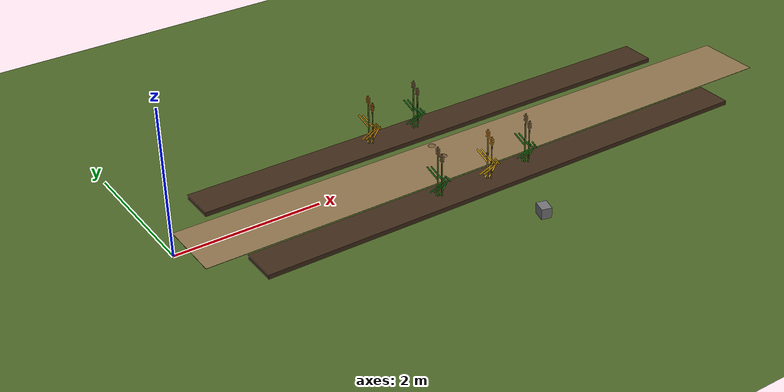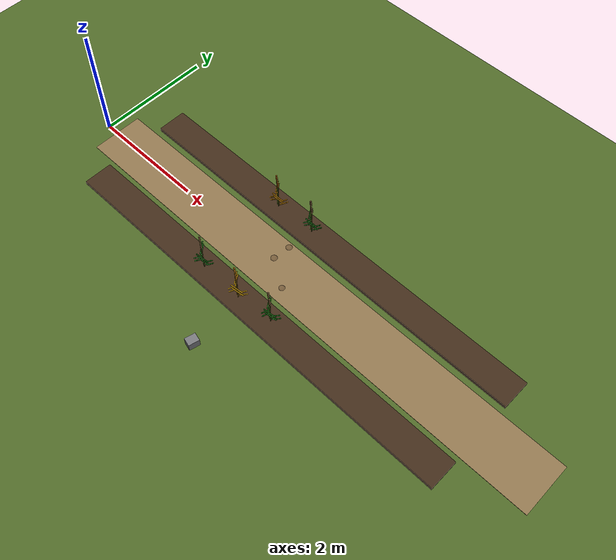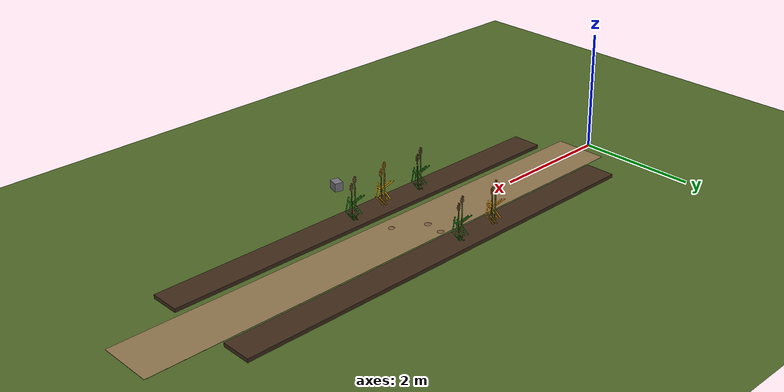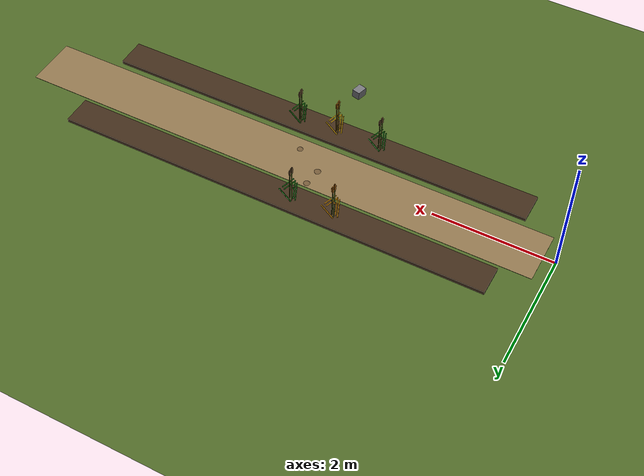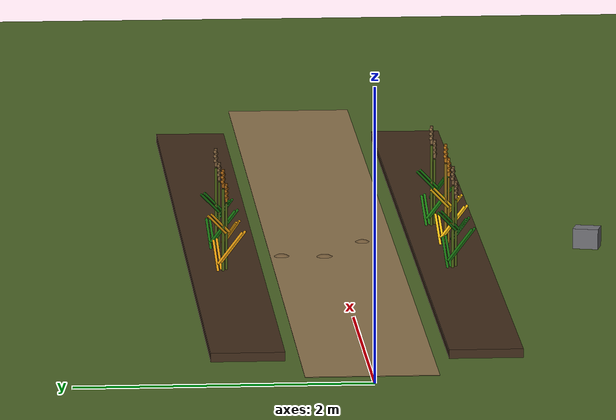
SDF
<sdf version="1.6">
 <world name="default">
  <model name="ground">
   <static>true</static>
   <link name="link">
    <collision name="col"><geometry><plane><normal>0 0 1</normal><size>40 40</size></plane></geometry></collision>
    <visual name="vis">
     <geometry><plane><normal>0 0 1</normal><size>40 40</size></plane></geometry>
     <material><ambient>0.30 0.40 0.15 1</ambient><diffuse>0.30 0.40 0.15 1</diffuse></material>
    </visual>
   </link>
  </model>
  <model name="path_1">
   <static>true</static>
   <pose>4.65 0.00 0.002 0 0 0.00</pose>
   <link name="link">
    <visual name="v">
     <geometry><box><size>8.90 0.90 0.004</size></box></geometry>
     <material><ambient>0.55 0.45 0.30 1</ambient><diffuse>0.55 0.45 0.30 1</diffuse></material>
    </visual>
   </link>
  </model>
  <model name="bed_1a">
   <static>true</static>
   <pose>4.35 -0.80 0.030 0 0 0.00</pose>
   <link name="link">
    <visual name="v">
     <geometry><box><size>7.30 0.50 0.060</size></box></geometry>
     <material><ambient>0.25 0.17 0.10 1</ambient><diffuse>0.25 0.17 0.10 1</diffuse></material>
    </visual>
   </link>
  </model>
  <model name="plant_04">
   <static>true</static>
   <pose>3.26 -0.78 0 0 0 0</pose>
   <link name="link">
    <visual name="stem_0">
     <pose>0.000 0.000 0.320 0.000 0.000 0.000</pose>
     <geometry><cylinder><radius>0.01</radius><length>0.64</length></cylinder></geometry>
     <material><ambient>0.30 0.38 0.08 1</ambient><diffuse>0.30 0.38 0.08 1</diffuse></material>
    </visual>
    <visual name="leaf_0_0">
     <pose>0.055 0.045 0.130 0.000 0.700 0.150</pose>
     <geometry><cylinder><radius>0.009</radius><length>0.3</length></cylinder></geometry>
     <material><ambient>0.08 0.42 0.05 1</ambient><diffuse>0.08 0.42 0.05 1</diffuse></material>
    </visual>
    <visual name="leaf_0_1">
     <pose>-0.055 -0.045 0.230 0.000 -0.720 1.900</pose>
     <geometry><cylinder><radius>0.009</radius><length>0.28</length></cylinder></geometry>
     <material><ambient>0.08 0.42 0.05 1</ambient><diffuse>0.08 0.42 0.05 1</diffuse></material>
    </visual>
    <visual name="leaf_0_2">
     <pose>0.055 -0.045 0.320 0.000 0.780 3.700</pose>
     <geometry><cylinder><radius>0.009</radius><length>0.24</length></cylinder></geometry>
     <material><ambient>0.08 0.42 0.05 1</ambient><diffuse>0.08 0.42 0.05 1</diffuse></material>
    </visual>
    <visual name="leaf_0_3">
     <pose>-0.055 0.045 0.400 0.000 -0.800 5.200</pose>
     <geometry><cylinder><radius>0.009</radius><length>0.2</length></cylinder></geometry>
     <material><ambient>0.08 0.42 0.05 1</ambient><diffuse>0.08 0.42 0.05 1</diffuse></material>
    </visual>
    <visual name="stem_1">
     <pose>0.045 -0.025 0.265 0.000 0.000 0.000</pose>
     <geometry><cylinder><radius>0.008</radius><length>0.53</length></cylinder></geometry>
     <material><ambient>0.30 0.38 0.08 1</ambient><diffuse>0.30 0.38 0.08 1</diffuse></material>
    </visual>
    <visual name="leaf_1_0">
     <pose>0.100 0.020 0.130 0.000 0.700 0.150</pose>
     <geometry><cylinder><radius>0.009</radius><length>0.3</length></cylinder></geometry>
     <material><ambient>0.08 0.42 0.05 1</ambient><diffuse>0.08 0.42 0.05 1</diffuse></material>
    </visual>
    <visual name="leaf_1_1">
     <pose>-0.010 -0.070 0.230 0.000 -0.720 1.900</pose>
     <geometry><cylinder><radius>0.009</radius><length>0.28</length></cylinder></geometry>
     <material><ambient>0.08 0.42 0.05 1</ambient><diffuse>0.08 0.42 0.05 1</diffuse></material>
    </visual>
    <visual name="leaf_1_2">
     <pose>0.100 -0.070 0.320 0.000 0.780 3.700</pose>
     <geometry><cylinder><radius>0.009</radius><length>0.24</length></cylinder></geometry>
     <material><ambient>0.08 0.42 0.05 1</ambient><diffuse>0.08 0.42 0.05 1</diffuse></material>
    </visual>
    <visual name="leaf_1_3">
     <pose>-0.010 0.020 0.400 0.000 -0.800 5.200</pose>
     <geometry><cylinder><radius>0.009</radius><length>0.2</length></cylinder></geometry>
     <material><ambient>0.08 0.42 0.05 1</ambient><diffuse>0.08 0.42 0.05 1</diffuse></material>
    </visual>
    <visual name="ear_axis_0">
     <pose>0.000 0.000 0.715 0.000 0.000 0.000</pose>
     <geometry><cylinder><radius>0.010</radius><length>0.13</length></cylinder></geometry>
     <material><ambient>0.48 0.36 0.22 1</ambient><diffuse>0.48 0.36 0.22 1</diffuse></material>
    </visual>
    <visual name="grain_0_0">
     <pose>0.012 -0.006 0.675 0.000 0.000 0.000</pose>
     <geometry><sphere><radius>0.012</radius></sphere></geometry>
     <material><ambient>0.48 0.36 0.22 1</ambient><diffuse>0.48 0.36 0.22 1</diffuse></material>
    </visual>
    <visual name="grain_0_1">
     <pose>-0.014 0.006 0.691 0.000 0.000 0.000</pose>
     <geometry><sphere><radius>0.012</radius></sphere></geometry>
     <material><ambient>0.48 0.36 0.22 1</ambient><diffuse>0.48 0.36 0.22 1</diffuse></material>
    </visual>
    <visual name="grain_0_2">
     <pose>0.016 -0.006 0.707 0.000 0.000 0.000</pose>
     <geometry><sphere><radius>0.012</radius></sphere></geometry>
     <material><ambient>0.48 0.36 0.22 1</ambient><diffuse>0.48 0.36 0.22 1</diffuse></material>
    </visual>
    <visual name="grain_0_3">
     <pose>-0.012 0.006 0.723 0.000 0.000 0.000</pose>
     <geometry><sphere><radius>0.012</radius></sphere></geometry>
     <material><ambient>0.48 0.36 0.22 1</ambient><diffuse>0.48 0.36 0.22 1</diffuse></material>
    </visual>
    <visual name="grain_0_4">
     <pose>0.014 -0.006 0.739 0.000 0.000 0.000</pose>
     <geometry><sphere><radius>0.012</radius></sphere></geometry>
     <material><ambient>0.48 0.36 0.22 1</ambient><diffuse>0.48 0.36 0.22 1</diffuse></material>
    </visual>
    <visual name="grain_0_5">
     <pose>-0.016 0.006 0.755 0.000 0.000 0.000</pose>
     <geometry><sphere><radius>0.012</radius></sphere></geometry>
     <material><ambient>0.48 0.36 0.22 1</ambient><diffuse>0.48 0.36 0.22 1</diffuse></material>
    </visual>
    <visual name="ear_axis_1">
     <pose>0.045 -0.025 0.605 0.000 0.000 0.000</pose>
     <geometry><cylinder><radius>0.010</radius><length>0.13</length></cylinder></geometry>
     <material><ambient>0.48 0.36 0.22 1</ambient><diffuse>0.48 0.36 0.22 1</diffuse></material>
    </visual>
    <visual name="grain_1_0">
     <pose>0.057 -0.031 0.565 0.000 0.000 0.000</pose>
     <geometry><sphere><radius>0.012</radius></sphere></geometry>
     <material><ambient>0.48 0.36 0.22 1</ambient><diffuse>0.48 0.36 0.22 1</diffuse></material>
    </visual>
    <visual name="grain_1_1">
     <pose>0.031 -0.019 0.581 0.000 0.000 0.000</pose>
     <geometry><sphere><radius>0.012</radius></sphere></geometry>
     <material><ambient>0.48 0.36 0.22 1</ambient><diffuse>0.48 0.36 0.22 1</diffuse></material>
    </visual>
    <visual name="grain_1_2">
     <pose>0.061 -0.031 0.597 0.000 0.000 0.000</pose>
     <geometry><sphere><radius>0.012</radius></sphere></geometry>
     <material><ambient>0.48 0.36 0.22 1</ambient><diffuse>0.48 0.36 0.22 1</diffuse></material>
    </visual>
    <visual name="grain_1_3">
     <pose>0.033 -0.019 0.613 0.000 0.000 0.000</pose>
     <geometry><sphere><radius>0.012</radius></sphere></geometry>
     <material><ambient>0.48 0.36 0.22 1</ambient><diffuse>0.48 0.36 0.22 1</diffuse></material>
    </visual>
    <visual name="grain_1_4">
     <pose>0.059 -0.031 0.629 0.000 0.000 0.000</pose>
     <geometry><sphere><radius>0.012</radius></sphere></geometry>
     <material><ambient>0.48 0.36 0.22 1</ambient><diffuse>0.48 0.36 0.22 1</diffuse></material>
    </visual>
    <visual name="grain_1_5">
     <pose>0.029 -0.019 0.645 0.000 0.000 0.000</pose>
     <geometry><sphere><radius>0.012</radius></sphere></geometry>
     <material><ambient>0.48 0.36 0.22 1</ambient><diffuse>0.48 0.36 0.22 1</diffuse></material>
    </visual>
   </link>
  </model>
  <model name="plant_05">
   <static>true</static>
   <pose>4.02 -0.79 0 0 0 0</pose>
   <link name="link">
    <visual name="stem_0">
     <pose>0.000 0.000 0.320 0.000 0.000 0.000</pose>
     <geometry><cylinder><radius>0.01</radius><length>0.64</length></cylinder></geometry>
     <material><ambient>0.55 0.42 0.08 1</ambient><diffuse>0.55 0.42 0.08 1</diffuse></material>
    </visual>
    <visual name="leaf_0_0">
     <pose>0.055 0.045 0.130 0.000 0.700 0.150</pose>
     <geometry><cylinder><radius>0.009</radius><length>0.3</length></cylinder></geometry>
     <material><ambient>0.95 0.73 0.06 1</ambient><diffuse>0.95 0.73 0.06 1</diffuse></material>
    </visual>
    <visual name="leaf_0_1">
     <pose>-0.055 -0.045 0.230 0.000 -0.720 1.900</pose>
     <geometry><cylinder><radius>0.009</radius><length>0.28</length></cylinder></geometry>
     <material><ambient>0.95 0.73 0.06 1</ambient><diffuse>0.95 0.73 0.06 1</diffuse></material>
    </visual>
    <visual name="leaf_0_2">
     <pose>0.055 -0.045 0.320 0.000 0.780 3.700</pose>
     <geometry><cylinder><radius>0.009</radius><length>0.24</length></cylinder></geometry>
     <material><ambient>0.95 0.73 0.06 1</ambient><diffuse>0.95 0.73 0.06 1</diffuse></material>
    </visual>
    <visual name="leaf_0_3">
     <pose>-0.055 0.045 0.400 0.000 -0.800 5.200</pose>
     <geometry><cylinder><radius>0.009</radius><length>0.2</length></cylinder></geometry>
     <material><ambient>0.95 0.73 0.06 1</ambient><diffuse>0.95 0.73 0.06 1</diffuse></material>
    </visual>
    <visual name="stem_1">
     <pose>0.045 -0.025 0.265 0.000 0.000 0.000</pose>
     <geometry><cylinder><radius>0.008</radius><length>0.53</length></cylinder></geometry>
     <material><ambient>0.55 0.42 0.08 1</ambient><diffuse>0.55 0.42 0.08 1</diffuse></material>
    </visual>
    <visual name="leaf_1_0">
     <pose>0.100 0.020 0.130 0.000 0.700 0.150</pose>
     <geometry><cylinder><radius>0.009</radius><length>0.3</length></cylinder></geometry>
     <material><ambient>0.95 0.73 0.06 1</ambient><diffuse>0.95 0.73 0.06 1</diffuse></material>
    </visual>
    <visual name="leaf_1_1">
     <pose>-0.010 -0.070 0.230 0.000 -0.720 1.900</pose>
     <geometry><cylinder><radius>0.009</radius><length>0.28</length></cylinder></geometry>
     <material><ambient>0.95 0.73 0.06 1</ambient><diffuse>0.95 0.73 0.06 1</diffuse></material>
    </visual>
    <visual name="leaf_1_2">
     <pose>0.100 -0.070 0.320 0.000 0.780 3.700</pose>
     <geometry><cylinder><radius>0.009</radius><length>0.24</length></cylinder></geometry>
     <material><ambient>0.95 0.73 0.06 1</ambient><diffuse>0.95 0.73 0.06 1</diffuse></material>
    </visual>
    <visual name="leaf_1_3">
     <pose>-0.010 0.020 0.400 0.000 -0.800 5.200</pose>
     <geometry><cylinder><radius>0.009</radius><length>0.2</length></cylinder></geometry>
     <material><ambient>0.95 0.73 0.06 1</ambient><diffuse>0.95 0.73 0.06 1</diffuse></material>
    </visual>
    <visual name="ear_axis_0">
     <pose>0.000 0.000 0.715 0.000 0.000 0.000</pose>
     <geometry><cylinder><radius>0.010</radius><length>0.13</length></cylinder></geometry>
     <material><ambient>0.72 0.45 0.08 1</ambient><diffuse>0.72 0.45 0.08 1</diffuse></material>
    </visual>
    <visual name="grain_0_0">
     <pose>0.012 -0.006 0.675 0.000 0.000 0.000</pose>
     <geometry><sphere><radius>0.012</radius></sphere></geometry>
     <material><ambient>0.72 0.45 0.08 1</ambient><diffuse>0.72 0.45 0.08 1</diffuse></material>
    </visual>
    <visual name="grain_0_1">
     <pose>-0.014 0.006 0.691 0.000 0.000 0.000</pose>
     <geometry><sphere><radius>0.012</radius></sphere></geometry>
     <material><ambient>0.72 0.45 0.08 1</ambient><diffuse>0.72 0.45 0.08 1</diffuse></material>
    </visual>
    <visual name="grain_0_2">
     <pose>0.016 -0.006 0.707 0.000 0.000 0.000</pose>
     <geometry><sphere><radius>0.012</radius></sphere></geometry>
     <material><ambient>0.72 0.45 0.08 1</ambient><diffuse>0.72 0.45 0.08 1</diffuse></material>
    </visual>
    <visual name="grain_0_3">
     <pose>-0.012 0.006 0.723 0.000 0.000 0.000</pose>
     <geometry><sphere><radius>0.012</radius></sphere></geometry>
     <material><ambient>0.72 0.45 0.08 1</ambient><diffuse>0.72 0.45 0.08 1</diffuse></material>
    </visual>
    <visual name="grain_0_4">
     <pose>0.014 -0.006 0.739 0.000 0.000 0.000</pose>
     <geometry><sphere><radius>0.012</radius></sphere></geometry>
     <material><ambient>0.72 0.45 0.08 1</ambient><diffuse>0.72 0.45 0.08 1</diffuse></material>
    </visual>
    <visual name="grain_0_5">
     <pose>-0.016 0.006 0.755 0.000 0.000 0.000</pose>
     <geometry><sphere><radius>0.012</radius></sphere></geometry>
     <material><ambient>0.72 0.45 0.08 1</ambient><diffuse>0.72 0.45 0.08 1</diffuse></material>
    </visual>
    <visual name="ear_axis_1">
     <pose>0.045 -0.025 0.605 0.000 0.000 0.000</pose>
     <geometry><cylinder><radius>0.010</radius><length>0.13</length></cylinder></geometry>
     <material><ambient>0.72 0.45 0.08 1</ambient><diffuse>0.72 0.45 0.08 1</diffuse></material>
    </visual>
    <visual name="grain_1_0">
     <pose>0.057 -0.031 0.565 0.000 0.000 0.000</pose>
     <geometry><sphere><radius>0.012</radius></sphere></geometry>
     <material><ambient>0.72 0.45 0.08 1</ambient><diffuse>0.72 0.45 0.08 1</diffuse></material>
    </visual>
    <visual name="grain_1_1">
     <pose>0.031 -0.019 0.581 0.000 0.000 0.000</pose>
     <geometry><sphere><radius>0.012</radius></sphere></geometry>
     <material><ambient>0.72 0.45 0.08 1</ambient><diffuse>0.72 0.45 0.08 1</diffuse></material>
    </visual>
    <visual name="grain_1_2">
     <pose>0.061 -0.031 0.597 0.000 0.000 0.000</pose>
     <geometry><sphere><radius>0.012</radius></sphere></geometry>
     <material><ambient>0.72 0.45 0.08 1</ambient><diffuse>0.72 0.45 0.08 1</diffuse></material>
    </visual>
    <visual name="grain_1_3">
     <pose>0.033 -0.019 0.613 0.000 0.000 0.000</pose>
     <geometry><sphere><radius>0.012</radius></sphere></geometry>
     <material><ambient>0.72 0.45 0.08 1</ambient><diffuse>0.72 0.45 0.08 1</diffuse></material>
    </visual>
    <visual name="grain_1_4">
     <pose>0.059 -0.031 0.629 0.000 0.000 0.000</pose>
     <geometry><sphere><radius>0.012</radius></sphere></geometry>
     <material><ambient>0.72 0.45 0.08 1</ambient><diffuse>0.72 0.45 0.08 1</diffuse></material>
    </visual>
    <visual name="grain_1_5">
     <pose>0.029 -0.019 0.645 0.000 0.000 0.000</pose>
     <geometry><sphere><radius>0.012</radius></sphere></geometry>
     <material><ambient>0.72 0.45 0.08 1</ambient><diffuse>0.72 0.45 0.08 1</diffuse></material>
    </visual>
   </link>
  </model>
  <model name="plant_06">
   <static>true</static>
   <pose>4.66 -0.74 0 0 0 0</pose>
   <link name="link">
    <visual name="stem_0">
     <pose>0.000 0.000 0.320 0.000 0.000 0.000</pose>
     <geometry><cylinder><radius>0.01</radius><length>0.64</length></cylinder></geometry>
     <material><ambient>0.30 0.38 0.08 1</ambient><diffuse>0.30 0.38 0.08 1</diffuse></material>
    </visual>
    <visual name="leaf_0_0">
     <pose>0.055 0.045 0.130 0.000 0.700 0.150</pose>
     <geometry><cylinder><radius>0.009</radius><length>0.3</length></cylinder></geometry>
     <material><ambient>0.10 0.48 0.06 1</ambient><diffuse>0.10 0.48 0.06 1</diffuse></material>
    </visual>
    <visual name="leaf_0_1">
     <pose>-0.055 -0.045 0.230 0.000 -0.720 1.900</pose>
     <geometry><cylinder><radius>0.009</radius><length>0.28</length></cylinder></geometry>
     <material><ambient>0.10 0.48 0.06 1</ambient><diffuse>0.10 0.48 0.06 1</diffuse></material>
    </visual>
    <visual name="leaf_0_2">
     <pose>0.055 -0.045 0.320 0.000 0.780 3.700</pose>
     <geometry><cylinder><radius>0.009</radius><length>0.24</length></cylinder></geometry>
     <material><ambient>0.10 0.48 0.06 1</ambient><diffuse>0.10 0.48 0.06 1</diffuse></material>
    </visual>
    <visual name="leaf_0_3">
     <pose>-0.055 0.045 0.400 0.000 -0.800 5.200</pose>
     <geometry><cylinder><radius>0.009</radius><length>0.2</length></cylinder></geometry>
     <material><ambient>0.10 0.48 0.06 1</ambient><diffuse>0.10 0.48 0.06 1</diffuse></material>
    </visual>
    <visual name="stem_1">
     <pose>0.045 -0.025 0.265 0.000 0.000 0.000</pose>
     <geometry><cylinder><radius>0.008</radius><length>0.53</length></cylinder></geometry>
     <material><ambient>0.30 0.38 0.08 1</ambient><diffuse>0.30 0.38 0.08 1</diffuse></material>
    </visual>
    <visual name="leaf_1_0">
     <pose>0.100 0.020 0.130 0.000 0.700 0.150</pose>
     <geometry><cylinder><radius>0.009</radius><length>0.3</length></cylinder></geometry>
     <material><ambient>0.10 0.48 0.06 1</ambient><diffuse>0.10 0.48 0.06 1</diffuse></material>
    </visual>
    <visual name="leaf_1_1">
     <pose>-0.010 -0.070 0.230 0.000 -0.720 1.900</pose>
     <geometry><cylinder><radius>0.009</radius><length>0.28</length></cylinder></geometry>
     <material><ambient>0.10 0.48 0.06 1</ambient><diffuse>0.10 0.48 0.06 1</diffuse></material>
    </visual>
    <visual name="leaf_1_2">
     <pose>0.100 -0.070 0.320 0.000 0.780 3.700</pose>
     <geometry><cylinder><radius>0.009</radius><length>0.24</length></cylinder></geometry>
     <material><ambient>0.10 0.48 0.06 1</ambient><diffuse>0.10 0.48 0.06 1</diffuse></material>
    </visual>
    <visual name="leaf_1_3">
     <pose>-0.010 0.020 0.400 0.000 -0.800 5.200</pose>
     <geometry><cylinder><radius>0.009</radius><length>0.2</length></cylinder></geometry>
     <material><ambient>0.10 0.48 0.06 1</ambient><diffuse>0.10 0.48 0.06 1</diffuse></material>
    </visual>
    <visual name="ear_axis_0">
     <pose>0.000 0.000 0.715 0.000 0.000 0.000</pose>
     <geometry><cylinder><radius>0.010</radius><length>0.13</length></cylinder></geometry>
     <material><ambient>0.52 0.40 0.25 1</ambient><diffuse>0.52 0.40 0.25 1</diffuse></material>
    </visual>
    <visual name="grain_0_0">
     <pose>0.012 -0.006 0.675 0.000 0.000 0.000</pose>
     <geometry><sphere><radius>0.012</radius></sphere></geometry>
     <material><ambient>0.52 0.40 0.25 1</ambient><diffuse>0.52 0.40 0.25 1</diffuse></material>
    </visual>
    <visual name="grain_0_1">
     <pose>-0.014 0.006 0.691 0.000 0.000 0.000</pose>
     <geometry><sphere><radius>0.012</radius></sphere></geometry>
     <material><ambient>0.52 0.40 0.25 1</ambient><diffuse>0.52 0.40 0.25 1</diffuse></material>
    </visual>
    <visual name="grain_0_2">
     <pose>0.016 -0.006 0.707 0.000 0.000 0.000</pose>
     <geometry><sphere><radius>0.012</radius></sphere></geometry>
     <material><ambient>0.52 0.40 0.25 1</ambient><diffuse>0.52 0.40 0.25 1</diffuse></material>
    </visual>
    <visual name="grain_0_3">
     <pose>-0.012 0.006 0.723 0.000 0.000 0.000</pose>
     <geometry><sphere><radius>0.012</radius></sphere></geometry>
     <material><ambient>0.52 0.40 0.25 1</ambient><diffuse>0.52 0.40 0.25 1</diffuse></material>
    </visual>
    <visual name="grain_0_4">
     <pose>0.014 -0.006 0.739 0.000 0.000 0.000</pose>
     <geometry><sphere><radius>0.012</radius></sphere></geometry>
     <material><ambient>0.52 0.40 0.25 1</ambient><diffuse>0.52 0.40 0.25 1</diffuse></material>
    </visual>
    <visual name="grain_0_5">
     <pose>-0.016 0.006 0.755 0.000 0.000 0.000</pose>
     <geometry><sphere><radius>0.012</radius></sphere></geometry>
     <material><ambient>0.52 0.40 0.25 1</ambient><diffuse>0.52 0.40 0.25 1</diffuse></material>
    </visual>
    <visual name="ear_axis_1">
     <pose>0.045 -0.025 0.605 0.000 0.000 0.000</pose>
     <geometry><cylinder><radius>0.010</radius><length>0.13</length></cylinder></geometry>
     <material><ambient>0.52 0.40 0.25 1</ambient><diffuse>0.52 0.40 0.25 1</diffuse></material>
    </visual>
    <visual name="grain_1_0">
     <pose>0.057 -0.031 0.565 0.000 0.000 0.000</pose>
     <geometry><sphere><radius>0.012</radius></sphere></geometry>
     <material><ambient>0.52 0.40 0.25 1</ambient><diffuse>0.52 0.40 0.25 1</diffuse></material>
    </visual>
    <visual name="grain_1_1">
     <pose>0.031 -0.019 0.581 0.000 0.000 0.000</pose>
     <geometry><sphere><radius>0.012</radius></sphere></geometry>
     <material><ambient>0.52 0.40 0.25 1</ambient><diffuse>0.52 0.40 0.25 1</diffuse></material>
    </visual>
    <visual name="grain_1_2">
     <pose>0.061 -0.031 0.597 0.000 0.000 0.000</pose>
     <geometry><sphere><radius>0.012</radius></sphere></geometry>
     <material><ambient>0.52 0.40 0.25 1</ambient><diffuse>0.52 0.40 0.25 1</diffuse></material>
    </visual>
    <visual name="grain_1_3">
     <pose>0.033 -0.019 0.613 0.000 0.000 0.000</pose>
     <geometry><sphere><radius>0.012</radius></sphere></geometry>
     <material><ambient>0.52 0.40 0.25 1</ambient><diffuse>0.52 0.40 0.25 1</diffuse></material>
    </visual>
    <visual name="grain_1_4">
     <pose>0.059 -0.031 0.629 0.000 0.000 0.000</pose>
     <geometry><sphere><radius>0.012</radius></sphere></geometry>
     <material><ambient>0.52 0.40 0.25 1</ambient><diffuse>0.52 0.40 0.25 1</diffuse></material>
    </visual>
    <visual name="grain_1_5">
     <pose>0.029 -0.019 0.645 0.000 0.000 0.000</pose>
     <geometry><sphere><radius>0.012</radius></sphere></geometry>
     <material><ambient>0.52 0.40 0.25 1</ambient><diffuse>0.52 0.40 0.25 1</diffuse></material>
    </visual>
   </link>
  </model>
  <model name="bed_1b">
   <static>true</static>
   <pose>4.35 0.80 0.030 0 0 0.00</pose>
   <link name="link">
    <visual name="v">
     <geometry><box><size>7.30 0.50 0.060</size></box></geometry>
     <material><ambient>0.25 0.17 0.10 1</ambient><diffuse>0.25 0.17 0.10 1</diffuse></material>
    </visual>
   </link>
  </model>
  <model name="plant_14">
   <static>true</static>
   <pose>3.26 0.82 0 0 0 0</pose>
   <link name="link">
    <visual name="stem_0">
     <pose>0.000 0.000 0.320 0.000 0.000 0.000</pose>
     <geometry><cylinder><radius>0.01</radius><length>0.64</length></cylinder></geometry>
     <material><ambient>0.30 0.38 0.08 1</ambient><diffuse>0.30 0.38 0.08 1</diffuse></material>
    </visual>
    <visual name="leaf_0_0">
     <pose>0.055 0.045 0.130 0.000 0.700 0.150</pose>
     <geometry><cylinder><radius>0.009</radius><length>0.3</length></cylinder></geometry>
     <material><ambient>0.86 0.58 0.04 1</ambient><diffuse>0.86 0.58 0.04 1</diffuse></material>
    </visual>
    <visual name="leaf_0_1">
     <pose>-0.055 -0.045 0.230 0.000 -0.720 1.900</pose>
     <geometry><cylinder><radius>0.009</radius><length>0.28</length></cylinder></geometry>
     <material><ambient>0.86 0.58 0.04 1</ambient><diffuse>0.86 0.58 0.04 1</diffuse></material>
    </visual>
    <visual name="leaf_0_2">
     <pose>0.055 -0.045 0.320 0.000 0.780 3.700</pose>
     <geometry><cylinder><radius>0.009</radius><length>0.24</length></cylinder></geometry>
     <material><ambient>0.86 0.58 0.04 1</ambient><diffuse>0.86 0.58 0.04 1</diffuse></material>
    </visual>
    <visual name="leaf_0_3">
     <pose>-0.055 0.045 0.400 0.000 -0.800 5.200</pose>
     <geometry><cylinder><radius>0.009</radius><length>0.2</length></cylinder></geometry>
     <material><ambient>0.86 0.58 0.04 1</ambient><diffuse>0.86 0.58 0.04 1</diffuse></material>
    </visual>
    <visual name="stem_1">
     <pose>0.045 -0.025 0.265 0.000 0.000 0.000</pose>
     <geometry><cylinder><radius>0.008</radius><length>0.53</length></cylinder></geometry>
     <material><ambient>0.30 0.38 0.08 1</ambient><diffuse>0.30 0.38 0.08 1</diffuse></material>
    </visual>
    <visual name="leaf_1_0">
     <pose>0.100 0.020 0.130 0.000 0.700 0.150</pose>
     <geometry><cylinder><radius>0.009</radius><length>0.3</length></cylinder></geometry>
     <material><ambient>0.86 0.58 0.04 1</ambient><diffuse>0.86 0.58 0.04 1</diffuse></material>
    </visual>
    <visual name="leaf_1_1">
     <pose>-0.010 -0.070 0.230 0.000 -0.720 1.900</pose>
     <geometry><cylinder><radius>0.009</radius><length>0.28</length></cylinder></geometry>
     <material><ambient>0.86 0.58 0.04 1</ambient><diffuse>0.86 0.58 0.04 1</diffuse></material>
    </visual>
    <visual name="leaf_1_2">
     <pose>0.100 -0.070 0.320 0.000 0.780 3.700</pose>
     <geometry><cylinder><radius>0.009</radius><length>0.24</length></cylinder></geometry>
     <material><ambient>0.86 0.58 0.04 1</ambient><diffuse>0.86 0.58 0.04 1</diffuse></material>
    </visual>
    <visual name="leaf_1_3">
     <pose>-0.010 0.020 0.400 0.000 -0.800 5.200</pose>
     <geometry><cylinder><radius>0.009</radius><length>0.2</length></cylinder></geometry>
     <material><ambient>0.86 0.58 0.04 1</ambient><diffuse>0.86 0.58 0.04 1</diffuse></material>
    </visual>
    <visual name="ear_axis_0">
     <pose>0.000 0.000 0.715 0.000 0.000 0.000</pose>
     <geometry><cylinder><radius>0.010</radius><length>0.13</length></cylinder></geometry>
     <material><ambient>0.62 0.36 0.06 1</ambient><diffuse>0.62 0.36 0.06 1</diffuse></material>
    </visual>
    <visual name="grain_0_0">
     <pose>0.012 -0.006 0.675 0.000 0.000 0.000</pose>
     <geometry><sphere><radius>0.012</radius></sphere></geometry>
     <material><ambient>0.62 0.36 0.06 1</ambient><diffuse>0.62 0.36 0.06 1</diffuse></material>
    </visual>
    <visual name="grain_0_1">
     <pose>-0.014 0.006 0.691 0.000 0.000 0.000</pose>
     <geometry><sphere><radius>0.012</radius></sphere></geometry>
     <material><ambient>0.62 0.36 0.06 1</ambient><diffuse>0.62 0.36 0.06 1</diffuse></material>
    </visual>
    <visual name="grain_0_2">
     <pose>0.016 -0.006 0.707 0.000 0.000 0.000</pose>
     <geometry><sphere><radius>0.012</radius></sphere></geometry>
     <material><ambient>0.62 0.36 0.06 1</ambient><diffuse>0.62 0.36 0.06 1</diffuse></material>
    </visual>
    <visual name="grain_0_3">
     <pose>-0.012 0.006 0.723 0.000 0.000 0.000</pose>
     <geometry><sphere><radius>0.012</radius></sphere></geometry>
     <material><ambient>0.62 0.36 0.06 1</ambient><diffuse>0.62 0.36 0.06 1</diffuse></material>
    </visual>
    <visual name="grain_0_4">
     <pose>0.014 -0.006 0.739 0.000 0.000 0.000</pose>
     <geometry><sphere><radius>0.012</radius></sphere></geometry>
     <material><ambient>0.62 0.36 0.06 1</ambient><diffuse>0.62 0.36 0.06 1</diffuse></material>
    </visual>
    <visual name="grain_0_5">
     <pose>-0.016 0.006 0.755 0.000 0.000 0.000</pose>
     <geometry><sphere><radius>0.012</radius></sphere></geometry>
     <material><ambient>0.62 0.36 0.06 1</ambient><diffuse>0.62 0.36 0.06 1</diffuse></material>
    </visual>
    <visual name="ear_axis_1">
     <pose>0.045 -0.025 0.605 0.000 0.000 0.000</pose>
     <geometry><cylinder><radius>0.010</radius><length>0.13</length></cylinder></geometry>
     <material><ambient>0.62 0.36 0.06 1</ambient><diffuse>0.62 0.36 0.06 1</diffuse></material>
    </visual>
    <visual name="grain_1_0">
     <pose>0.057 -0.031 0.565 0.000 0.000 0.000</pose>
     <geometry><sphere><radius>0.012</radius></sphere></geometry>
     <material><ambient>0.62 0.36 0.06 1</ambient><diffuse>0.62 0.36 0.06 1</diffuse></material>
    </visual>
    <visual name="grain_1_1">
     <pose>0.031 -0.019 0.581 0.000 0.000 0.000</pose>
     <geometry><sphere><radius>0.012</radius></sphere></geometry>
     <material><ambient>0.62 0.36 0.06 1</ambient><diffuse>0.62 0.36 0.06 1</diffuse></material>
    </visual>
    <visual name="grain_1_2">
     <pose>0.061 -0.031 0.597 0.000 0.000 0.000</pose>
     <geometry><sphere><radius>0.012</radius></sphere></geometry>
     <material><ambient>0.62 0.36 0.06 1</ambient><diffuse>0.62 0.36 0.06 1</diffuse></material>
    </visual>
    <visual name="grain_1_3">
     <pose>0.033 -0.019 0.613 0.000 0.000 0.000</pose>
     <geometry><sphere><radius>0.012</radius></sphere></geometry>
     <material><ambient>0.62 0.36 0.06 1</ambient><diffuse>0.62 0.36 0.06 1</diffuse></material>
    </visual>
    <visual name="grain_1_4">
     <pose>0.059 -0.031 0.629 0.000 0.000 0.000</pose>
     <geometry><sphere><radius>0.012</radius></sphere></geometry>
     <material><ambient>0.62 0.36 0.06 1</ambient><diffuse>0.62 0.36 0.06 1</diffuse></material>
    </visual>
    <visual name="grain_1_5">
     <pose>0.029 -0.019 0.645 0.000 0.000 0.000</pose>
     <geometry><sphere><radius>0.012</radius></sphere></geometry>
     <material><ambient>0.62 0.36 0.06 1</ambient><diffuse>0.62 0.36 0.06 1</diffuse></material>
    </visual>
   </link>
  </model>
  <model name="plant_15">
   <static>true</static>
   <pose>3.98 0.83 0 0 0 0</pose>
   <link name="link">
    <visual name="stem_0">
     <pose>0.000 0.000 0.320 0.000 0.000 0.000</pose>
     <geometry><cylinder><radius>0.01</radius><length>0.64</length></cylinder></geometry>
     <material><ambient>0.30 0.38 0.08 1</ambient><diffuse>0.30 0.38 0.08 1</diffuse></material>
    </visual>
    <visual name="leaf_0_0">
     <pose>0.055 0.045 0.130 0.000 0.700 0.150</pose>
     <geometry><cylinder><radius>0.009</radius><length>0.3</length></cylinder></geometry>
     <material><ambient>0.08 0.42 0.05 1</ambient><diffuse>0.08 0.42 0.05 1</diffuse></material>
    </visual>
    <visual name="leaf_0_1">
     <pose>-0.055 -0.045 0.230 0.000 -0.720 1.900</pose>
     <geometry><cylinder><radius>0.009</radius><length>0.28</length></cylinder></geometry>
     <material><ambient>0.08 0.42 0.05 1</ambient><diffuse>0.08 0.42 0.05 1</diffuse></material>
    </visual>
    <visual name="leaf_0_2">
     <pose>0.055 -0.045 0.320 0.000 0.780 3.700</pose>
     <geometry><cylinder><radius>0.009</radius><length>0.24</length></cylinder></geometry>
     <material><ambient>0.08 0.42 0.05 1</ambient><diffuse>0.08 0.42 0.05 1</diffuse></material>
    </visual>
    <visual name="leaf_0_3">
     <pose>-0.055 0.045 0.400 0.000 -0.800 5.200</pose>
     <geometry><cylinder><radius>0.009</radius><length>0.2</length></cylinder></geometry>
     <material><ambient>0.08 0.42 0.05 1</ambient><diffuse>0.08 0.42 0.05 1</diffuse></material>
    </visual>
    <visual name="stem_1">
     <pose>0.045 -0.025 0.265 0.000 0.000 0.000</pose>
     <geometry><cylinder><radius>0.008</radius><length>0.53</length></cylinder></geometry>
     <material><ambient>0.30 0.38 0.08 1</ambient><diffuse>0.30 0.38 0.08 1</diffuse></material>
    </visual>
    <visual name="leaf_1_0">
     <pose>0.100 0.020 0.130 0.000 0.700 0.150</pose>
     <geometry><cylinder><radius>0.009</radius><length>0.3</length></cylinder></geometry>
     <material><ambient>0.08 0.42 0.05 1</ambient><diffuse>0.08 0.42 0.05 1</diffuse></material>
    </visual>
    <visual name="leaf_1_1">
     <pose>-0.010 -0.070 0.230 0.000 -0.720 1.900</pose>
     <geometry><cylinder><radius>0.009</radius><length>0.28</length></cylinder></geometry>
     <material><ambient>0.08 0.42 0.05 1</ambient><diffuse>0.08 0.42 0.05 1</diffuse></material>
    </visual>
    <visual name="leaf_1_2">
     <pose>0.100 -0.070 0.320 0.000 0.780 3.700</pose>
     <geometry><cylinder><radius>0.009</radius><length>0.24</length></cylinder></geometry>
     <material><ambient>0.08 0.42 0.05 1</ambient><diffuse>0.08 0.42 0.05 1</diffuse></material>
    </visual>
    <visual name="leaf_1_3">
     <pose>-0.010 0.020 0.400 0.000 -0.800 5.200</pose>
     <geometry><cylinder><radius>0.009</radius><length>0.2</length></cylinder></geometry>
     <material><ambient>0.08 0.42 0.05 1</ambient><diffuse>0.08 0.42 0.05 1</diffuse></material>
    </visual>
    <visual name="ear_axis_0">
     <pose>0.000 0.000 0.715 0.000 0.000 0.000</pose>
     <geometry><cylinder><radius>0.010</radius><length>0.13</length></cylinder></geometry>
     <material><ambient>0.48 0.36 0.22 1</ambient><diffuse>0.48 0.36 0.22 1</diffuse></material>
    </visual>
    <visual name="grain_0_0">
     <pose>0.012 -0.006 0.675 0.000 0.000 0.000</pose>
     <geometry><sphere><radius>0.012</radius></sphere></geometry>
     <material><ambient>0.48 0.36 0.22 1</ambient><diffuse>0.48 0.36 0.22 1</diffuse></material>
    </visual>
    <visual name="grain_0_1">
     <pose>-0.014 0.006 0.691 0.000 0.000 0.000</pose>
     <geometry><sphere><radius>0.012</radius></sphere></geometry>
     <material><ambient>0.48 0.36 0.22 1</ambient><diffuse>0.48 0.36 0.22 1</diffuse></material>
    </visual>
    <visual name="grain_0_2">
     <pose>0.016 -0.006 0.707 0.000 0.000 0.000</pose>
     <geometry><sphere><radius>0.012</radius></sphere></geometry>
     <material><ambient>0.48 0.36 0.22 1</ambient><diffuse>0.48 0.36 0.22 1</diffuse></material>
    </visual>
    <visual name="grain_0_3">
     <pose>-0.012 0.006 0.723 0.000 0.000 0.000</pose>
     <geometry><sphere><radius>0.012</radius></sphere></geometry>
     <material><ambient>0.48 0.36 0.22 1</ambient><diffuse>0.48 0.36 0.22 1</diffuse></material>
    </visual>
    <visual name="grain_0_4">
     <pose>0.014 -0.006 0.739 0.000 0.000 0.000</pose>
     <geometry><sphere><radius>0.012</radius></sphere></geometry>
     <material><ambient>0.48 0.36 0.22 1</ambient><diffuse>0.48 0.36 0.22 1</diffuse></material>
    </visual>
    <visual name="grain_0_5">
     <pose>-0.016 0.006 0.755 0.000 0.000 0.000</pose>
     <geometry><sphere><radius>0.012</radius></sphere></geometry>
     <material><ambient>0.48 0.36 0.22 1</ambient><diffuse>0.48 0.36 0.22 1</diffuse></material>
    </visual>
    <visual name="ear_axis_1">
     <pose>0.045 -0.025 0.605 0.000 0.000 0.000</pose>
     <geometry><cylinder><radius>0.010</radius><length>0.13</length></cylinder></geometry>
     <material><ambient>0.48 0.36 0.22 1</ambient><diffuse>0.48 0.36 0.22 1</diffuse></material>
    </visual>
    <visual name="grain_1_0">
     <pose>0.057 -0.031 0.565 0.000 0.000 0.000</pose>
     <geometry><sphere><radius>0.012</radius></sphere></geometry>
     <material><ambient>0.48 0.36 0.22 1</ambient><diffuse>0.48 0.36 0.22 1</diffuse></material>
    </visual>
    <visual name="grain_1_1">
     <pose>0.031 -0.019 0.581 0.000 0.000 0.000</pose>
     <geometry><sphere><radius>0.012</radius></sphere></geometry>
     <material><ambient>0.48 0.36 0.22 1</ambient><diffuse>0.48 0.36 0.22 1</diffuse></material>
    </visual>
    <visual name="grain_1_2">
     <pose>0.061 -0.031 0.597 0.000 0.000 0.000</pose>
     <geometry><sphere><radius>0.012</radius></sphere></geometry>
     <material><ambient>0.48 0.36 0.22 1</ambient><diffuse>0.48 0.36 0.22 1</diffuse></material>
    </visual>
    <visual name="grain_1_3">
     <pose>0.033 -0.019 0.613 0.000 0.000 0.000</pose>
     <geometry><sphere><radius>0.012</radius></sphere></geometry>
     <material><ambient>0.48 0.36 0.22 1</ambient><diffuse>0.48 0.36 0.22 1</diffuse></material>
    </visual>
    <visual name="grain_1_4">
     <pose>0.059 -0.031 0.629 0.000 0.000 0.000</pose>
     <geometry><sphere><radius>0.012</radius></sphere></geometry>
     <material><ambient>0.48 0.36 0.22 1</ambient><diffuse>0.48 0.36 0.22 1</diffuse></material>
    </visual>
    <visual name="grain_1_5">
     <pose>0.029 -0.019 0.645 0.000 0.000 0.000</pose>
     <geometry><sphere><radius>0.012</radius></sphere></geometry>
     <material><ambient>0.48 0.36 0.22 1</ambient><diffuse>0.48 0.36 0.22 1</diffuse></material>
    </visual>
   </link>
  </model>
  <model name="rock_08">
   <static>true</static>
   <pose>4.14 -1.80 0.071 0 0 1.32</pose>
   <link name="link">
    <collision name="c"><geometry><box><size>0.18 0.14 0.143</size></box></geometry></collision>
    <visual name="v">
     <geometry><box><size>0.18 0.14 0.143</size></box></geometry>
     <material><ambient>0.45 0.45 0.47 1</ambient><diffuse>0.45 0.45 0.47 1</diffuse></material>
    </visual>
   </link>
  </model>
  <model name="bump_1_02">
   <static>true</static>
   <pose>4.40 -0.23 -0.070 0 0 0</pose>
   <link name="link">
    <collision name="c"><geometry><sphere><radius>0.090</radius></sphere></geometry></collision>
    <visual name="v">
     <geometry><sphere><radius>0.090</radius></sphere></geometry>
     <material><ambient>0.45 0.35 0.22 1</ambient><diffuse>0.45 0.35 0.22 1</diffuse></material>
    </visual>
   </link>
  </model>
  <model name="bump_1_05">
   <static>true</static>
   <pose>3.96 0.37 -0.087 0 0 0</pose>
   <link name="link">
    <collision name="c"><geometry><sphere><radius>0.107</radius></sphere></geometry></collision>
    <visual name="v">
     <geometry><sphere><radius>0.107</radius></sphere></geometry>
     <material><ambient>0.45 0.35 0.22 1</ambient><diffuse>0.45 0.35 0.22 1</diffuse></material>
    </visual>
   </link>
  </model>
  <model name="bump_1_14">
   <static>true</static>
   <pose>3.93 0.07 -0.097 0 0 0</pose>
   <link name="link">
    <collision name="c"><geometry><sphere><radius>0.117</radius></sphere></geometry></collision>
    <visual name="v">
     <geometry><sphere><radius>0.117</radius></sphere></geometry>
     <material><ambient>0.45 0.35 0.22 1</ambient><diffuse>0.45 0.35 0.22 1</diffuse></material>
    </visual>
   </link>
  </model>
 </world>
</sdf>
